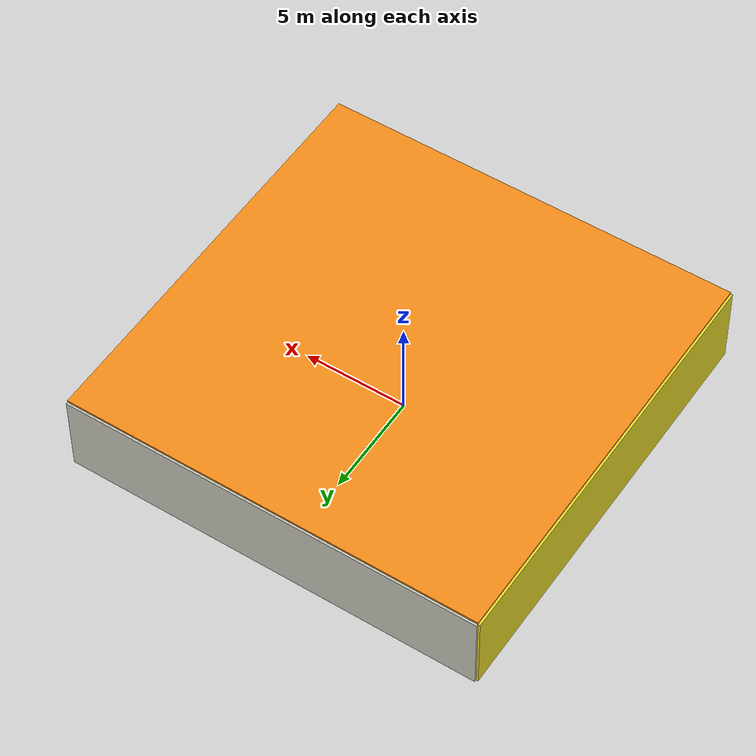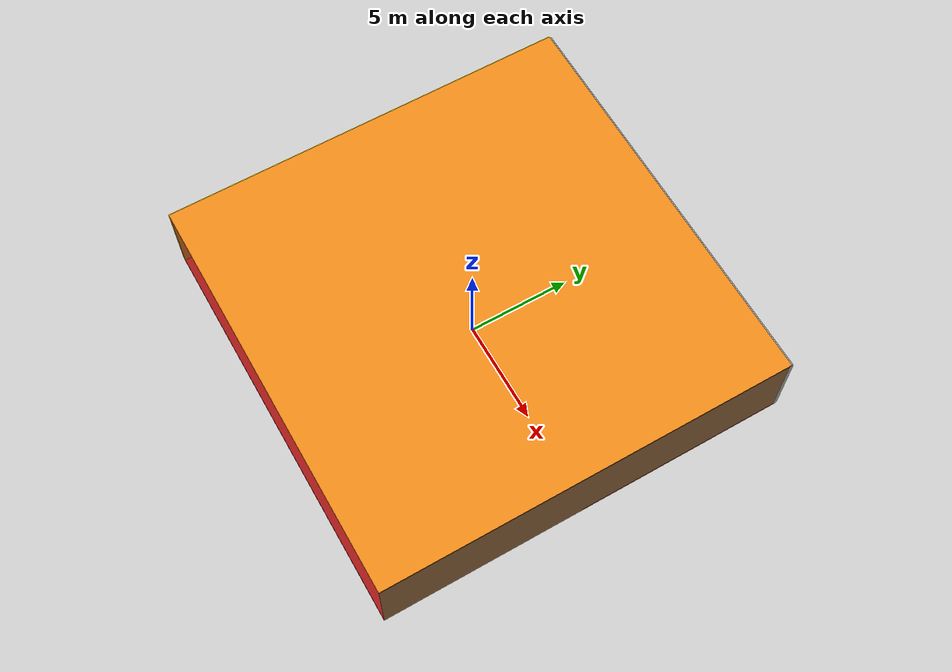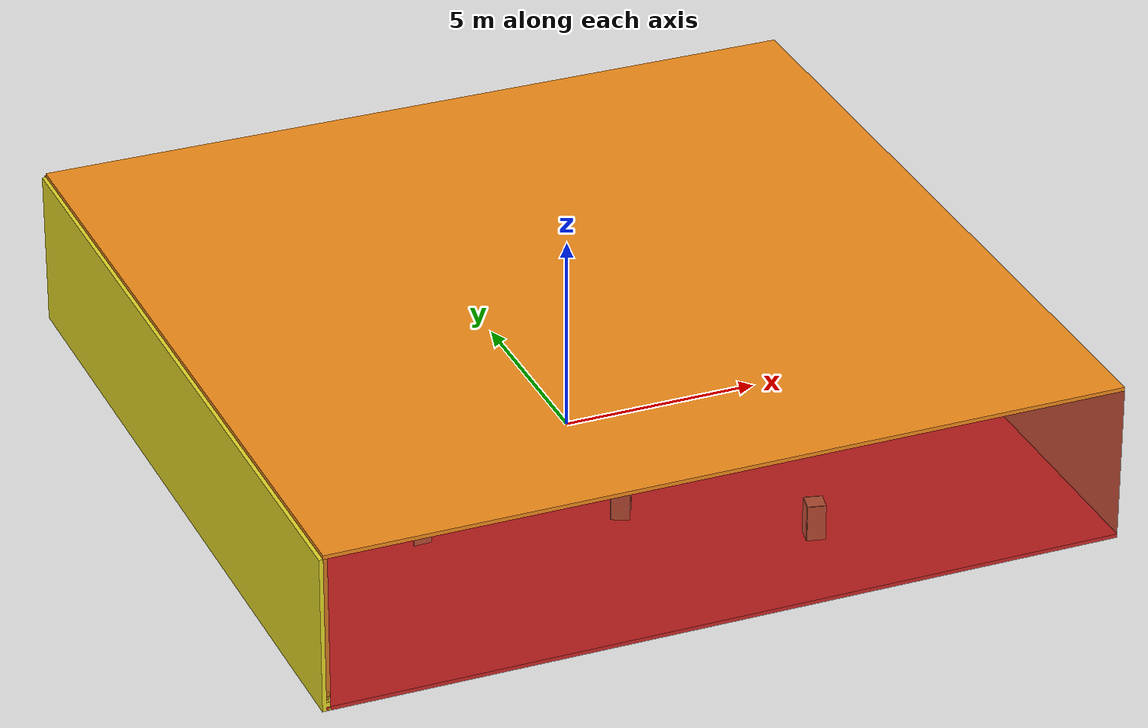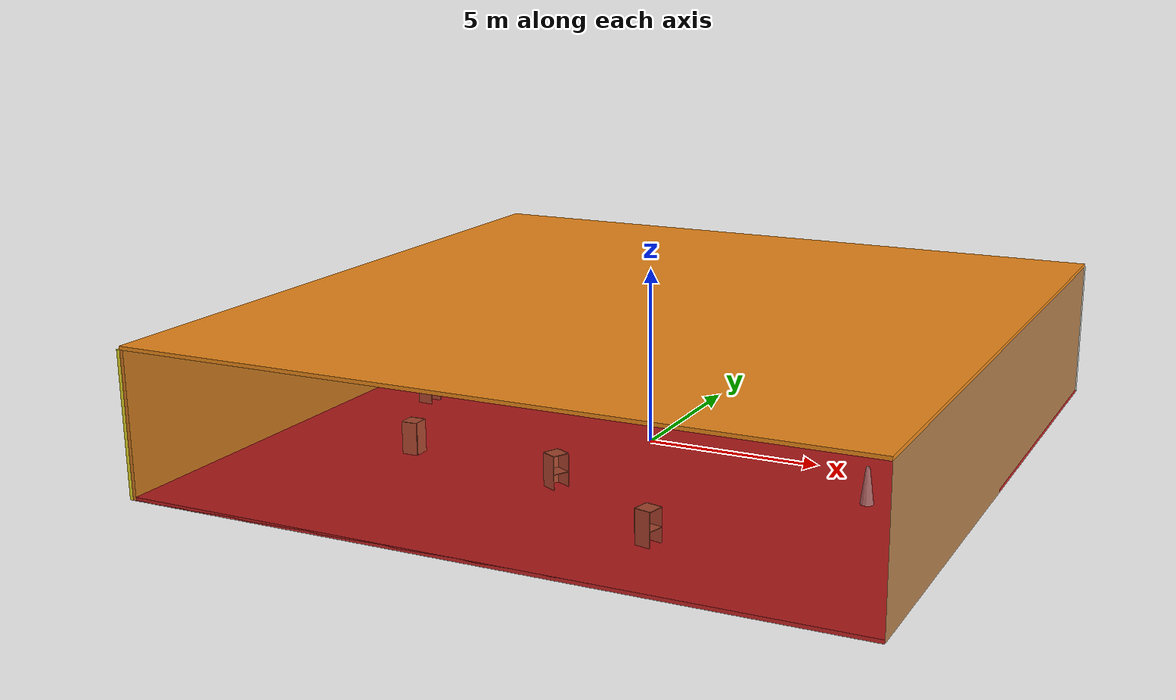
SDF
<sdf version="1.4">
 <world name="default">
  <physics type="ode">
   <max_step_size>0.001</max_step_size>
   <real_time_factor>1</real_time_factor>
   <real_time_update_rate>1000</real_time_update_rate>
   <gravity>0 0 -9.8</gravity>
  </physics>
  <scene><ambient>0.4 0.4 0.4 1</ambient><background>0.7 0.7 0.7 1</background><shadows>1</shadows></scene>
  <model name="Surrounding">
   <static>1</static>
   <link name="Ceiling">
    <collision name="Ceiling_Collision"><geometry><box><size>20 20 0.1</size></box></geometry></collision>
    <visual name="Ceiling_Visual">
     <geometry><box><size>20 20 0.1</size></box></geometry>
     <material>
      <script><uri>file://media/materials/scripts/gazebo.material</uri><name>Gazebo/Orange</name></script>
     </material>
    </visual>
    <pose>0 0 4.05 0 0 0</pose>
   </link>
   <link name="Wall_South">
    <collision name="Wall_South_Collision">
     <geometry><box><size>20 0 4</size></box></geometry>
     <pose>0 0 2 0 -0 0</pose>
    </collision>
    <visual name="Wall_South_Visual">
     <pose>0 0 2 0 -0 0</pose>
     <geometry><box><size>20 0 4</size></box></geometry>
     <material>
      <script><uri>file://media/materials/scripts/gazebo.material</uri><name>Gazebo/RedTransparent</name></script>
     </material>
    </visual>
    <velocity_decay><linear>0</linear><angular>0</angular></velocity_decay>
    <pose>0 -10 0 0 -0 0</pose>
   </link>
   <link name="Wall_East">
    <collision name="Wall_21_Collision">
     <geometry><box><size>20 0 4</size></box></geometry>
     <pose>0 0 2 0 -0 0</pose>
    </collision>
    <visual name="Wall_21_Visual">
     <pose>0 0 2 0 -0 0</pose>
     <geometry><box><size>20 0 4</size></box></geometry>
     <material>
      <script><uri>file://media/materials/scripts/gazebo.material</uri><name>Gazebo/WoodPallet</name></script>
     </material>
    </visual>
    <velocity_decay><linear>0</linear><angular>0</angular></velocity_decay>
    <pose>10 0 0 0 -0 1.5708</pose>
   </link>
   <link name="Wall_North">
    <collision name="Wall_22_Collision">
     <geometry><box><size>20 0.2 4</size></box></geometry>
     <pose>0 0 2 0 -0 0</pose>
    </collision>
    <visual name="Wall_22_Visual">
     <pose>0 0 2 0 -0 0</pose>
     <geometry><box><size>20 0.2 4</size></box></geometry>
     <material>
      <script><uri>file://media/materials/scripts/gazebo.material</uri><name>Gazebo/PaintedWall</name></script>
     </material>
    </visual>
    <velocity_decay><linear>0</linear><angular>0</angular></velocity_decay>
    <pose>0 10 0 0 -0 0</pose>
   </link>
   <link name="Wall_West">
    <collision name="Wall_23_Collision">
     <geometry><box><size>20 0.2 4</size></box></geometry>
     <pose>0 0 2 0 -0 0</pose>
    </collision>
    <visual name="Wall_23_Visual">
     <pose>0 0 2 0 -0 0</pose>
     <geometry><box><size>20 0.2 4</size></box></geometry>
     <material>
      <script><uri>file://media/materials/scripts/gazebo.material</uri><name>Gazebo/YellowGlow</name></script>
     </material>
    </visual>
    <velocity_decay><linear>0</linear><angular>0</angular></velocity_decay>
    <pose>-10 0 0 0 0 -1.5708</pose>
   </link>
   <link name="Ground_link">
    <collision name="collision">
     <pose>0 0 .05 0 -0 0</pose>
     <geometry><box><size>20 20 0.1</size></box></geometry>
    </collision>
    <visual name="visual">
     <pose>0 0 .05 0 -0 0</pose>
     <geometry><box><size>20 20 0.1</size></box></geometry>
     <material>
      <script><uri>file://media/materials/scripts/gazebo.material</uri><name>Gazebo/RedBright</name></script>
     </material>
    </visual>
   </link>
   <static>1</static>
  </model>
  <spherical_coordinates>
   <surface_model>EARTH_WGS84</surface_model>
   <latitude_deg>0</latitude_deg>
   <longitude_deg>0</longitude_deg>
   <elevation>0</elevation>
   <heading_deg>0</heading_deg>
  </spherical_coordinates>
  <light name="lightball_0" type="diffuse">
   <diffuse>0.8 0.8 0.8 1</diffuse>
   <specular>0.2 0.2 0.2 1</specular>
   <attenuation>
    <range>100</range>
    <constant>0.7</constant>
    <linear>0.01</linear>
    <quadratic>0.001</quadratic>
   </attenuation>
   <direction>-0.5 0.1 -0.9</direction>
   <pose>-6.49257234424 9.20939831814 1.49259347043 0 0 0</pose>
  </light>
  <light name="lightball_1" type="diffuse">
   <diffuse>0.8 0.8 0.8 1</diffuse>
   <specular>0.2 0.2 0.2 1</specular>
   <attenuation>
    <range>100</range>
    <constant>0.7</constant>
    <linear>0.01</linear>
    <quadratic>0.001</quadratic>
   </attenuation>
   <direction>-0.5 0.1 -0.9</direction>
   <pose>-0.251988453365 9.59597023422 3.39790527154 0 0 0</pose>
  </light>
  <light name="lightball_2" type="diffuse">
   <diffuse>0.8 0.8 0.8 1</diffuse>
   <specular>0.2 0.2 0.2 1</specular>
   <attenuation>
    <range>100</range>
    <constant>0.7</constant>
    <linear>0.01</linear>
    <quadratic>0.001</quadratic>
   </attenuation>
   <direction>-0.5 0.1 -0.9</direction>
   <pose>-0.433723369195 -5.17393403299 2.5159877067 0 0 0</pose>
  </light>
  <light name="lightball_3" type="diffuse">
   <diffuse>0.8 0.8 0.8 1</diffuse>
   <specular>0.2 0.2 0.2 1</specular>
   <attenuation>
    <range>100</range>
    <constant>0.7</constant>
    <linear>0.01</linear>
    <quadratic>0.001</quadratic>
   </attenuation>
   <direction>-0.5 0.1 -0.9</direction>
   <pose>-2.12433303499 -3.42889248607 2.04893865012 0 0 0</pose>
  </light>
  <light name="lightball_4" type="diffuse">
   <diffuse>0.8 0.8 0.8 1</diffuse>
   <specular>0.2 0.2 0.2 1</specular>
   <attenuation>
    <range>100</range>
    <constant>0.7</constant>
    <linear>0.01</linear>
    <quadratic>0.001</quadratic>
   </attenuation>
   <direction>-0.5 0.1 -0.9</direction>
   <pose>-6.3515644612 0.132907488341 2.9700818347 0 0 0</pose>
  </light>
  <light name="lightball_5" type="diffuse">
   <diffuse>0.8 0.8 0.8 1</diffuse>
   <specular>0.2 0.2 0.2 1</specular>
   <attenuation>
    <range>100</range>
    <constant>0.7</constant>
    <linear>0.01</linear>
    <quadratic>0.001</quadratic>
   </attenuation>
   <direction>-0.5 0.1 -0.9</direction>
   <pose>-2.64199275257 0.123336843283 3.19132764857 0 0 0</pose>
  </light>
  <light name="lightball_6" type="diffuse">
   <diffuse>0.8 0.8 0.8 1</diffuse>
   <specular>0.2 0.2 0.2 1</specular>
   <attenuation>
    <range>100</range>
    <constant>0.7</constant>
    <linear>0.01</linear>
    <quadratic>0.001</quadratic>
   </attenuation>
   <direction>-0.5 0.1 -0.9</direction>
   <pose>-5.28018987772 -3.16854048972 1.24210890643 0 0 0</pose>
  </light>
  <light name="lightball_7" type="diffuse">
   <diffuse>0.8 0.8 0.8 1</diffuse>
   <specular>0.2 0.2 0.2 1</specular>
   <attenuation>
    <range>100</range>
    <constant>0.7</constant>
    <linear>0.01</linear>
    <quadratic>0.001</quadratic>
   </attenuation>
   <direction>-0.5 0.1 -0.9</direction>
   <pose>9.30858882692 3.58757401618 3.07689992122 0 0 0</pose>
  </light>
  <light name="lightball_8" type="diffuse">
   <diffuse>0.8 0.8 0.8 1</diffuse>
   <specular>0.2 0.2 0.2 1</specular>
   <attenuation>
    <range>100</range>
    <constant>0.7</constant>
    <linear>0.01</linear>
    <quadratic>0.001</quadratic>
   </attenuation>
   <direction>-0.5 0.1 -0.9</direction>
   <pose>9.89766072855 2.83385202165 1.32723458819 0 0 0</pose>
  </light>
  <light name="lightball_9" type="diffuse">
   <diffuse>0.8 0.8 0.8 1</diffuse>
   <specular>0.2 0.2 0.2 1</specular>
   <attenuation>
    <range>100</range>
    <constant>0.7</constant>
    <linear>0.01</linear>
    <quadratic>0.001</quadratic>
   </attenuation>
   <direction>-0.5 0.1 -0.9</direction>
   <pose>-2.66846038973 4.03488669977 2.85847828479 0 0 0</pose>
  </light>
  <light name="lightball_10" type="diffuse">
   <diffuse>0.8 0.8 0.8 1</diffuse>
   <specular>0.2 0.2 0.2 1</specular>
   <attenuation>
    <range>100</range>
    <constant>0.7</constant>
    <linear>0.01</linear>
    <quadratic>0.001</quadratic>
   </attenuation>
   <direction>-0.5 0.1 -0.9</direction>
   <pose>-1.25872552287 -3.0993823964 0.701609522417 0 0 0</pose>
  </light>
  <light name="lightball_11" type="diffuse">
   <diffuse>0.8 0.8 0.8 1</diffuse>
   <specular>0.2 0.2 0.2 1</specular>
   <attenuation>
    <range>100</range>
    <constant>0.7</constant>
    <linear>0.01</linear>
    <quadratic>0.001</quadratic>
   </attenuation>
   <direction>-0.5 0.1 -0.9</direction>
   <pose>7.60979039645 -8.65452110872 1.83721710294 0 0 0</pose>
  </light>
  <light name="lightball_12" type="diffuse">
   <diffuse>0.8 0.8 0.8 1</diffuse>
   <specular>0.2 0.2 0.2 1</specular>
   <attenuation>
    <range>100</range>
    <constant>0.7</constant>
    <linear>0.01</linear>
    <quadratic>0.001</quadratic>
   </attenuation>
   <direction>-0.5 0.1 -0.9</direction>
   <pose>6.07426444429 -6.18290889725 3.26430586708 0 0 0</pose>
  </light>
  <include><uri>model://cabinet</uri><pose>-7.62767409383 0.360064952265 0 0 0 3.10390534223</pose></include>
  <include><uri>model://cabinet</uri><pose>-5.41729673322 -3.9166433981 0 0 0 0.0364066347494</pose></include>
  <include><uri>model://cabinet</uri><pose>-0.542273949136 -4.69848127116 0 0 0 2.67542858771</pose></include>
  <include>
   <uri>model://construction_cone</uri>
   <pose>-1.3479570384 1.3745724224 0 0 0 0.771616332186</pose>
  </include>
  <include><uri>model://cabinet</uri><pose>1.88144448831 6.5811641956 0 0 0 1.67419803712</pose></include>
  <include><uri>model://cabinet</uri><pose>3.33189892448 -7.30046280547 0 0 0 2.91675188587</pose></include>
  <include>
   <uri>model://robocup_3Dsim_goal</uri>
   <pose>4.36472959234 5.16188305755 0 0 0 2.24746232512</pose>
  </include>
  <include>
   <uri>model://construction_cone</uri>
   <pose>7.20427912786 -2.53450174314 0 0 0 2.37400056258</pose>
  </include>
  <include>
   <uri>model://construction_cone</uri>
   <pose>7.46397987623 4.6746192083 0 0 0 0.0532150732232</pose>
  </include>
  <include><uri>model://cabinet</uri><pose>7.97778469265 8.28720560097 0 0 0 1.76934417096</pose></include>
 </world>
</sdf>

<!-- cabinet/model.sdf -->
<sdf version="1.5">
  <model name="cabinet">
    <static>true</static>
    <link name="cabinet_bottom_plate">
      <inertial>
        <pose>0 0 -1 0 0 0</pose>
        <inertia>
          <ixx>2.050000</ixx>
          <ixy>0</ixy>
          <ixz>0</ixz>
          <iyy>2.050000</iyy>
          <iyz>0</iyz>
          <izz>2.050000</izz>
        </inertia>
        <mass>25.000000</mass>
      </inertial>
      <collision name="cabinet_bottom_plate_geom">
        <pose>0 0 0.010000 0 0 0</pose>
        <geometry>
          <box>
            <size>0.450000 0.450000 0.020000</size>
          </box>
        </geometry>
      </collision>
      <visual name="cabinet_bottom_plate_geom_visual">
        <pose>0 0 0.010000 0 0 0</pose>
        <geometry>
          <box>
            <size>0.450000 0.450000 0.020000</size>
          </box>
        </geometry>
        <material>
          <script>
            <uri>model://media/materials/scripts/gazebo.material</uri>
            <name>Gazebo/Wood</name>
          </script>
        </material>
      </visual>
      <collision name="cabinet_bottom_plate_geom_cabinet_back_plate">
        <pose>0.235000 0 0.510000 0 0 0</pose>
        <geometry>
          <box>
            <size>0.020000 0.450000 1.020000</size>
          </box>
        </geometry>
      </collision>
      <visual name="cabinet_bottom_plate_geom_cabinet_back_plate_visual">
        <pose>0.235000 0 0.510000 0 0 0</pose>
        <geometry>
          <box>
            <size>0.020000 0.450000 1.020000</size>
          </box>
        </geometry>
        <material>
          <script>
            <uri>model://media/materials/scripts/gazebo.material</uri>
            <name>Gazebo/Wood</name>
          </script>
        </material>
      </visual>
      <collision name="cabinet_bottom_plate_geom_cabinet_left_plate">
        <pose>0 0.235000 0.510000 0 0 0</pose>
        <geometry>
          <box>
            <size>0.450000 0.020000 1.020000</size>
          </box>
        </geometry>
      </collision>
      <visual name="cabinet_bottom_plate_geom_cabinet_left_plate_visual">
        <pose>0 0.235000 0.510000 0 0 0</pose>
        <geometry>
          <box>
            <size>0.450000 0.020000 1.020000</size>
          </box>
        </geometry>
        <material>
          <script>
            <uri>model://media/materials/scripts/gazebo.material</uri>
            <name>Gazebo/Wood</name>
          </script>
        </material>
      </visual>
      <collision name="cabinet_bottom_plate_geom_cabinet_middle_plate">
        <pose>0 0 0.510000 0 0 0</pose>
        <geometry>
          <box>
            <size>0.450000 0.450000 0.020000</size>
          </box>
        </geometry>
      </collision>
      <visual name="cabinet_bottom_plate_geom_cabinet_middle_plate_visual">
        <pose>0 0 0.510000 0 0 0</pose>
        <geometry>
          <box>
            <size>0.450000 0.450000 0.020000</size>
          </box>
        </geometry>
        <material>
          <script>
            <uri>model://media/materials/scripts/gazebo.material</uri>
            <name>Gazebo/Wood</name>
          </script>
        </material>
      </visual>
      <collision name="cabinet_bottom_plate_geom_cabinet_right_plate">
        <pose>0 -0.235000 0.510000 0 0 0</pose>
        <geometry>
          <box>
            <size>0.450000 0.020000 1.020000</size>
          </box>
        </geometry>
      </collision>
      <visual name="cabinet_bottom_plate_geom_cabinet_right_plate_visual">
        <pose>0 -0.235000 0.510000 0 0 0</pose>
        <geometry>
          <box>
            <size>0.450000 0.020000 1.020000</size>
          </box>
        </geometry>
        <material>
          <script>
            <uri>model://media/materials/scripts/gazebo.material</uri>
            <name>Gazebo/Wood</name>
          </script>
        </material>
      </visual>
      <collision name="cabinet_bottom_plate_geom_cabinet_top_plate">
        <pose>0 0 1.010000 0 0 0</pose>
        <geometry>
          <box>
            <size>0.450000 0.450000 0.020000</size>
          </box>
        </geometry>
      </collision>
      <visual name="cabinet_bottom_plate_geom_cabinet_top_plate_visual">
        <pose>0 0 1.010000 0 0 0</pose>
        <geometry>
          <box>
            <size>0.450000 0.450000 0.020000</size>
          </box>
        </geometry>
        <material>
          <script>
            <uri>model://media/materials/scripts/gazebo.material</uri>
            <name>Gazebo/Wood</name>
          </script>
        </material>
      </visual>
    </link>
  </model>
</sdf>

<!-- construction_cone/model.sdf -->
<sdf version="1.5">
  <model name="Construction Cone">
    <link name="link">
      <collision name="collision">
        <geometry>
          <mesh>
            <scale>10 10 10</scale>
            <uri>file://isr-testbed/construction_cone/meshes/construction_cone.dae</uri>
          </mesh>
        </geometry>
      </collision>
      <visual name="visual">
        <geometry>
          <mesh>
            <scale>10 10 10</scale>
            <uri>file://isr-testbed/construction_cone/meshes/construction_cone.dae</uri>
          </mesh>
        </geometry>
      </visual>
    </link>
  </model>
</sdf>

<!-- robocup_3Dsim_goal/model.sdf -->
<sdf version="1.5">
  <model name="robocup_3d_goal">
    <static>true</static>
    <link name="left_post">
      <pose>0 1.05 0.45 0 0 0</pose>
      <collision name="collision">
        <geometry>
          <cylinder>
            <radius>0.05</radius>
            <length>0.9</length>
          </cylinder>
        </geometry>
      </collision>
      <visual name="visual">
        <geometry>
          <cylinder>
            <radius>0.05</radius>
            <length>0.9</length>
          </cylinder>
        </geometry>
        <material>
          <script>
            <uri>file://media/materials/scripts/gazebo.material</uri>
            <name>Gazebo/ZincYellow</name>
          </script>
        </material>
      </visual>
    </link>
    <link name="left_support_horiz_lower">
      <pose>0.30 1.05 0.01 0 0 0</pose>
      <collision name="collision">
        <geometry>
          <box>
            <size>0.50 0.02 0.02</size>
          </box>
        </geometry>
      </collision>
      <visual name="visual">
        <geometry>
          <box>
            <size>0.50 0.02 0.02</size>
          </box>
        </geometry>
        <material>
          <script>
            <uri>file://media/materials/scripts/gazebo.material</uri>
            <name>Gazebo/White</name>
          </script>
        </material>
      </visual>
    </link>
    <link name="left_support_horiz_upper">
      <pose>0.30 1.05 0.79 0 0 0</pose>
      <collision name="collision">
        <geometry>
          <box>
            <size>0.50 0.02 0.02</size>
          </box>
        </geometry>
      </collision>
      <visual name="visual">
        <geometry>
          <box>
            <size>0.50 0.02 0.02</size>
          </box>
        </geometry>
        <material>
          <script>
            <uri>file://media/materials/scripts/gazebo.material</uri>
            <name>Gazebo/White</name>
          </script>
        </material>
      </visual>
    </link>
    <link name="left_support_vertical">
      <pose>0.56 1.05 0.4 0 1.5708 0</pose>
      <collision name="collision">
        <geometry>
          <box>
            <size>0.80 0.02 0.02</size>
          </box>
        </geometry>
      </collision>
      <visual name="visual">
        <geometry>
          <box>
            <size>0.80 0.02 0.02</size>
          </box>
        </geometry>
        <material>
          <script>
            <uri>file://media/materials/scripts/gazebo.material</uri>
            <name>Gazebo/White</name>
          </script>
        </material>
      </visual>
    </link>
    <link name="right_support_horiz_lower">
      <pose>0.30 -1.05 0.01 0 0 0</pose>
      <collision name="collision">
        <geometry>
          <box>
            <size>0.50 0.02 0.02</size>
          </box>
        </geometry>
      </collision>
      <visual name="visual">
        <geometry>
          <box>
            <size>0.50 0.02 0.02</size>
          </box>
        </geometry>
        <material>
          <script>
            <uri>file://media/materials/scripts/gazebo.material</uri>
            <name>Gazebo/White</name>
          </script>
        </material>
      </visual>
    </link>
    <link name="right_support_horiz_upper">
      <pose>0.30 -1.05 0.79 0 0 0</pose>
      <collision name="collision">
        <geometry>
          <box>
            <size>0.50 0.02 0.02</size>
          </box>
        </geometry>
      </collision>
      <visual name="visual">
        <geometry>
          <box>
            <size>0.50 0.02 0.02</size>
          </box>
        </geometry>
        <material>
          <script>
            <uri>file://media/materials/scripts/gazebo.material</uri>
            <name>Gazebo/White</name>
          </script>
        </material>
      </visual>
    </link>
    <link name="right_support_vertical">
      <pose>0.56 -1.05 0.4 0 1.5708 0</pose>
      <collision name="collision">
        <geometry>
          <box>
            <size>0.80 0.02 0.02</size>
          </box>
        </geometry>
      </collision>
      <visual name="visual">
        <geometry>
          <box>
            <size>0.80 0.02 0.02</size>
          </box>
        </geometry>
        <material>
          <script>
            <uri>file://media/materials/scripts/gazebo.material</uri>
            <name>Gazebo/White</name>
          </script>
        </material>
      </visual>
    </link>
    <link name="center_support_horiz_lower">
      <pose>0.56 0 0.01 0 1.5708 0</pose>
      <collision name="collision">
        <geometry>
          <box>
            <size>0.02 2.08 0.02</size>
          </box>
        </geometry>
      </collision>
      <visual name="visual">
        <geometry>
          <box>
            <size>0.02 2.08 0.02</size>
          </box>
        </geometry>
        <material>
          <script>
            <uri>file://media/materials/scripts/gazebo.material</uri>
            <name>Gazebo/White</name>
          </script>
        </material>
      </visual>
    </link>
    <link name="center_support_horiz_upper">
      <pose>0.56 0 0.79 0 1.5708 0</pose>
      <collision name="collision">
        <geometry>
          <box>
            <size>0.02 2.08 0.02</size>
          </box>
        </geometry>
      </collision>
      <visual name="visual">
        <geometry>
          <box>
            <size>0.02 2.08 0.02</size>
          </box>
        </geometry>
        <material>
          <script>
            <uri>file://media/materials/scripts/gazebo.material</uri>
            <name>Gazebo/White</name>
          </script>
        </material>
      </visual>
    </link>
    <link name="right_post">
      <pose>0 -1.05 0.45 0 0 0</pose>
      <collision name="collision">
        <geometry>
          <cylinder>
            <radius>0.05</radius>
            <length>0.9</length>
          </cylinder>
        </geometry>
      </collision>
      <visual name="visual">
        <geometry>
          <cylinder>
            <radius>0.05</radius>
            <length>0.9</length>
          </cylinder>
        </geometry>
        <material>
          <script>
            <uri>file://media/materials/scripts/gazebo.material</uri>
            <name>Gazebo/ZincYellow</name>
          </script>
        </material>
      </visual>
    </link>
    <link name="crossbar">
      <pose>0 0 0.85 1.57 1.57 0</pose>
      <collision name="collision">
        <geometry>
          <cylinder>
            <radius>0.05</radius>
            <length>2.0</length>
          </cylinder>
        </geometry>
      </collision>
      <visual name="visual">
        <geometry>
          <cylinder>
            <radius>0.05</radius>
            <length>2.0</length>
          </cylinder>
        </geometry>
        <material>
          <script>
            <uri>file://media/materials/scripts/gazebo.material</uri>
            <name>Gazebo/ZincYellow</name>
          </script>
        </material>
      </visual>
    </link>
    <link name="center_net">
      <pose>0.56 0 0.40 0 0 0</pose>
      <collision name="collision">
        <geometry>
          <box>
            <size>0.01 2.1 0.80</size>
          </box>
        </geometry>
      </collision>
      <visual name="visual">
        <geometry>
          <box>
            <size>0.01 2.1 0.80</size>
          </box>
        </geometry>
        <material>
          <script>
            <uri>model://../model_source/models/robocup09_spl_field/materials/scripts/</uri>
            <uri>model://../model_source/models/robocup09_spl_field/materials/textures/</uri>
            <name>RoboCup/Net</name>
          </script>
        </material>
      </visual>
    </link>
    <link name="left_net">
      <pose>0.30 1.05 0.40 0 0 0</pose>
      <collision name="collision">
        <geometry>
          <box>
            <size>0.50 0.01 0.76</size>
          </box>
        </geometry>
      </collision>
      <visual name="visual">
        <geometry>
          <box>
            <size>0.50 0.01 0.76</size>
          </box>
        </geometry>
        <material>
          <script>
            <uri>model://../model_source/models/robocup09_spl_field/materials/scripts/</uri>
            <uri>model://../model_source/models/robocup09_spl_field/materials/textures/</uri>
            <name>RoboCup/Net</name>
          </script>
        </material>
      </visual>
    </link>
    <link name="right_net">
      <pose>0.30 -1.05 0.40 0 0 0</pose>
      <collision name="collision">
        <geometry>
          <box>
            <size>0.50 0.01 0.76</size>
          </box>
        </geometry>
      </collision>
      <visual name="visual">
        <geometry>
          <box>
            <size>0.50 0.01 0.76</size>
          </box>
        </geometry>
        <material>
          <script>
            <uri>model://../model_source/models/robocup09_spl_field/materials/scripts/</uri>
            <uri>model://../model_source/models/robocup09_spl_field/materials/textures/</uri>
            <name>RoboCup/Net</name>
          </script>
        </material>
      </visual>
    </link>
  </model>
</sdf>
